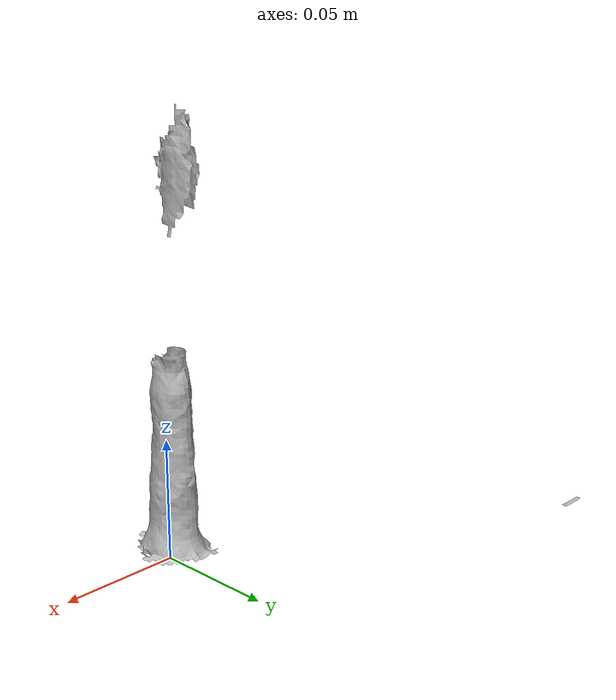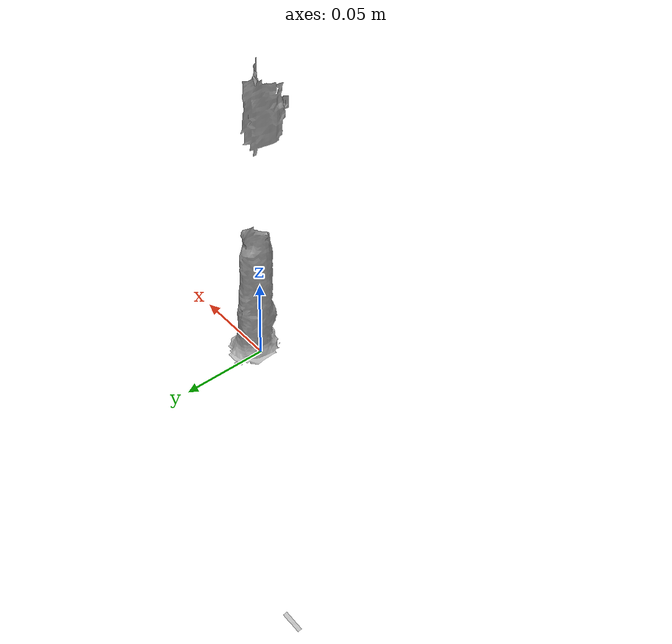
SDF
<?xml version="1.0" ?>
<sdf version="1.4">
  <model name="030_fork">
    <pose>0 0 0  0 0 0</pose>
    <link name="body">
      <inertial>
        <!-- Volume:  1.8993456000e-05 -->
        <mass> 1.0 </mass>
        <!-- Center of mass: -1.1834000000e-03  2.1632000000e-03  3.9661660000e-02 -->
        <pose> -1.1834000000e-03  2.1632000000e-03  3.9661660000e-02 0 0 0 </pose>
        <!-- Inertia matrix -->
        <inertia>
          <ixx>  4.7585375194e-04 </ixx>
          <ixy> -8.9290753615e-07 </ixy>
          <ixz>  1.6082781354e-05 </ixz>
          <iyy>  4.7055231023e-04 </iyy>
          <iyz>  1.0203961828e-05 </iyz>
          <izz>  4.1062137401e-05 </izz>
        </inertia>
      </inertial>
      <visual name="visual">
        <geometry>
          <mesh>
            <uri>model://030_fork/nontextured.stl</uri>
          </mesh>
        </geometry>
      </visual>
      <collision name="collision">
        <geometry>
          <mesh>
            <uri>model://030_fork/nontextured.stl</uri>
          </mesh>
        </geometry>
        <max_contacts>10</max_contacts>
        <surface>
          <friction>
            <ode>
              <mu>0.8</mu>
              <mu2>0.8</mu2>
              <slip1>0</slip1>
              <slip2>0</slip2>
            </ode>
            <torsional>
              <ode/>
            </torsional>
          </friction>
          <contact>
            <ode>
              <kp>1000000.0</kp>
              <kd>1.0</kd>
              <max_vel>0.0</max_vel>
            </ode>
          </contact>
        </surface>
      </collision>
    </link>
  </model>
</sdf>
